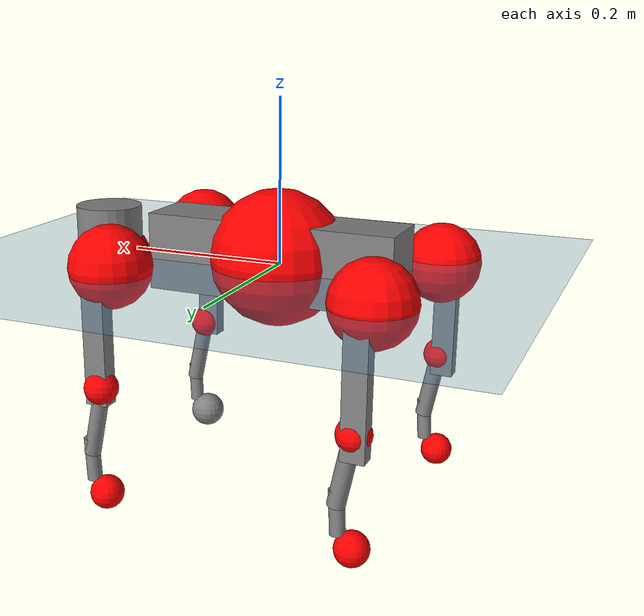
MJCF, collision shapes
<mujoco model="go2">
  <compiler angle="radian" assetdir="assets" balanceinertia="true" inertiafromgeom="false"/>

  <option timestep="0.005" density="1.2" viscosity="2e-05"/>

  <size nkey="1"/>

  <visual>
    <quality shadowsize="8192"/>
    <map shadowclip="0.5"/>
  </visual>

  <default>
    <default class="/">
      <geom contype="0" conaffinity="0" group="1" solref="-1000 -80"/>
      <site size="0.01 0.005 0.005" group="5"/>
      <general forcelimited="true" biastype="affine" gainprm="20" biasprm="0 -20 -0.5"/>
      <default class="go2">
        <joint armature="0.01" damping="0.01" frictionloss="0.2"/>
        <geom condim="1" margin="0.001"/>
        <default class="visual">
          <geom type="mesh" group="2"/>
        </default>
        <default class="collision">
          <geom group="3"/>
          <default class="foot">
            <geom size="0.022 0 0" condim="6" priority="1" friction="0.8 0.02 0.01" solimp="0.015 1 0.022"/>
          </default>
        </default>
        <default class="reward_collision_sphere">
          <geom group="5" rgba="1 0 0 1"/>
        </default>
      </default>
    </default>
  </default>

  <asset>
    <texture type="skybox" colorspace="auto" name="//unnamed_texture_0" builtin="gradient" rgb1="0.95 0.95 0.95" rgb2="0.95 0.95 0.95" width="100" height="600"/>
    <texture type="2d" colorspace="auto" name="texplane" builtin="checker" rgb1="0.345 0.575 0.748" rgb2="0.345 0.575 0.748" markrgb="1 1 1" width="512" height="512"/>
    <material name="MatPlane" class="/" texture="texplane" texuniform="true" texrepeat="2 2" specular="0.9"/>
    <material name="metal" class="/" rgba="0.9 0.95 0.95 1"/>
    <material name="black" class="/" rgba="0 0 0 1"/>
    <material name="white" class="/"/>
    <material name="gray" class="/" rgba="0.671705 0.692426 0.77427 1"/>
    <mesh name="base_0" class="/" file="base_0.obj"/>
    <mesh name="base_1" class="/" file="base_1.obj"/>
    <mesh name="base_2" class="/" file="base_2.obj"/>
    <mesh name="base_3" class="/" file="base_3.obj"/>
    <mesh name="base_4" class="/" file="base_4.obj"/>
    <mesh name="hip_0" class="/" file="hip_0.obj"/>
    <mesh name="hip_1" class="/" file="hip_1.obj"/>
    <mesh name="thigh_0" class="/" file="thigh_0.obj"/>
    <mesh name="thigh_1" class="/" file="thigh_1.obj"/>
    <mesh name="thigh_mirror_0" class="/" file="thigh_mirror_0.obj"/>
    <mesh name="thigh_mirror_1" class="/" file="thigh_mirror_1.obj"/>
    <mesh name="calf_0" class="/" file="calf_0.obj"/>
    <mesh name="calf_1" class="/" file="calf_1.obj"/>
    <mesh name="calf_mirror_0" class="/" file="calf_mirror_0.obj"/>
    <mesh name="calf_mirror_1" class="/" file="calf_mirror_1.obj"/>
    <mesh name="foot" class="/" file="foot.obj"/>
  </asset>

  <worldbody>
    <geom name="floor" class="/" size="100 100 0.125" type="plane" group="0" material="MatPlane"/>
    <light name="toplight_shadow" class="/" pos="0 0 5" dir="0.0990148 0.0990148 -0.990148" type="directional" ambient="0.04 0.04 0.04" diffuse="0.55 0.55 0.55" specular="0.12 0.12 0.12"/>
    <light name="toplight_fill" class="/" pos="0 0 5" dir="0.0990148 0.0990148 -0.990148" type="directional" castshadow="false" ambient="0.04 0.04 0.04" diffuse="0.3 0.3 0.3" specular="0.08 0.08 0.08"/>
    <body name="trunk" childclass="go2" pos="0.0021108 0.000210128 0.00800995" quat="0.999994 0.000888652 -0.00252577 -0.00227076">
      <inertial pos="0.0206021 -0.00521669 -0.00394881" quat="-0.00762434 0.691532 -0.0125024 0.722197" mass="3.77864" diaginertia="0.0387772 0.0952632 0.00247984"/>
      <joint name="//unnamed_joint_0" type="free" armature="0" damping="0" frictionloss="0"/>
      <geom name="//unnamed_geom_1" class="visual" material="black" mesh="base_0"/>
      <geom name="//unnamed_geom_2" class="visual" material="black" mesh="base_1"/>
      <geom name="//unnamed_geom_3" class="visual" material="black" mesh="base_2"/>
      <geom name="//unnamed_geom_4" class="visual" material="white" mesh="base_3"/>
      <geom name="//unnamed_geom_5" class="visual" material="gray" mesh="base_4"/>
      <geom name="trunk_1" class="collision" size="0.157119 0.0390499 0.0476117" type="box"/>
      <geom name="trunk_2" class="collision" size="0.0417646 0.0375882" pos="0.239343 0 0.00644565" type="cylinder"/>
      <geom name="trunk_3" class="collision" size="0.0392587" pos="0.246062 0 -0.0386739"/>
      <geom name="//unnamed_geom_9" class="reward_collision_sphere" size="0.0835292"/>
      <geom name="//unnamed_geom_10" class="reward_collision_sphere" size="0.0501175" pos="0.235144 0 -0.0290054"/>
      <site name="imu" pos="-0.0128647 -0.0118696 0.0508201" size="0.00835292"/>
      <camera name="track" pos="0 -2.04302 0" quat="0.707107 0.707107 0 0" mode="trackcom"/>
      <camera name="ego_camera" pos="0.262018 0 0.0290054" quat="-0.5 -0.5 0.5 0.5"/>
      <body name="FL_hip" pos="0.162429 0.0480345 -0.00173694" quat="1 -2.31533e-05 -0.000659234 0.000520541">
        <inertial pos="0.00198277 0.00382938 0.00777894" quat="0.522922 0.494194 0.510953 0.470373" mass="0.409608" diaginertia="0.000359943 0.000674467 5.48656e-05"/>
        <joint name="FL_hip_joint" pos="0 0 0" axis="0.999498 -0.0080257 0.0306583" stiffness="0.0218675" range="-1.05082 1.01071" armature="0.00836962" damping="0.0282436" frictionloss="0.152247"/>
        <geom name="//unnamed_geom_11" class="visual" material="metal" mesh="hip_0"/>
        <geom name="//unnamed_geom_12" class="visual" material="gray" mesh="hip_1"/>
        <geom name="//unnamed_geom_13" class="collision" size="0.0384235 0.0167058" pos="0 0.0817209 0" quat="0.707107 0.707107 0 0" type="cylinder"/>
        <geom name="//unnamed_geom_14" class="reward_collision_sphere" size="0.0501175" pos="0 0.0715058 0"/>
        <body name="FL_thigh" pos="0.00508587 0.0969046 -0.00579219" quat="1 -3.44427e-06 -5.66037e-06 -3.37289e-06">
          <inertial pos="-0.00189556 -0.0217848 -0.0230235" quat="0.828683 0.0841441 -0.0182565 0.553056" mass="0.73367" diaginertia="0.00272388 0.00699805 0.000111698"/>
          <joint name="FL_thigh_joint" pos="0 0 0" axis="0.00431347 0.999989 0.00190904" stiffness="0.0105553" range="-1.5291 3.47916" armature="0.00983292" damping="0" frictionloss="0.166347"/>
          <geom name="//unnamed_geom_15" class="visual" material="metal" mesh="thigh_0"/>
          <geom name="//unnamed_geom_16" class="visual" material="gray" mesh="thigh_1"/>
          <geom name="//unnamed_geom_17" class="collision" size="0.0889586 0.0102323 0.0142" pos="0 0 -0.0686461" quat="0.707107 0 0.707107 0" type="box"/>
          <body name="FL_calf" pos="-0.00214325 0.00105945 -0.137546" quat="1 -0.000154218 0.000191207 -0.000147347">
            <inertial pos="0.0143985 0.00673416 -0.0927096" quat="0.707933 -0.00675967 -0.00642063 0.706218" mass="0.13868" diaginertia="0.000660884 0.00163652 5.7659e-06"/>
            <joint name="FL_calf_joint" pos="0 0 0" axis="0.000106841 0.999996 -0.00288424" stiffness="0.0137878" range="-2.54501 -0.885067" armature="0.00812957" damping="0" frictionloss="0.0969391"/>
            <geom name="//unnamed_geom_18" class="visual" material="gray" mesh="calf_0"/>
            <geom name="//unnamed_geom_19" class="visual" material="black" mesh="calf_1"/>
            <geom name="FL_calf0" class="collision" size="0.0100235 0.0501175" pos="0.00671841 0 -0.0386739" quat="0.994493 0 -0.104807 0" type="cylinder"/>
            <geom name="//unnamed_geom_21" class="collision" size="0.00918822 0.027147" pos="0.016796 0 -0.0953956" quat="0.999688 0 0.0249974 0" type="cylinder"/>
            <geom name="//unnamed_geom_22" class="visual" pos="0 0 -0.137292" quat="1 0 0 0" material="black" mesh="foot"/>
            <geom name="FL_foot" class="foot" size="0.0199914" pos="-0.0016796 0 -0.137292"/>
            <geom name="//unnamed_geom_24" class="reward_collision_sphere" size="0.0208823"/>
            <geom name="//unnamed_geom_25" class="reward_collision_sphere" size="0.0208823" pos="-0.0016796 0 -0.137292"/>
            <site name="FL_foot" class="foot" pos="-0.0016796 0 -0.137292" size="0.00835292"/>
          </body>
        </body>
      </body>
      <body name="FR_hip" pos="0.164764 -0.0507629 -0.00119533" quat="0.999991 -4.50558e-05 -0.00414589 -0.000704383">
        <inertial pos="-0.00399677 -0.00115304 0.000460725" quat="0.515078 0.480137 0.483625 0.519876" mass="0.351918" diaginertia="0.000374977 0.000647465 5.43733e-05"/>
        <joint name="FR_hip_joint" pos="0 0 0" axis="0.99995 0.00814261 0.00588192" stiffness="0.0297724" range="-0.889656 1.08308" armature="0.00878424" damping="0.0225656" frictionloss="0.141353"/>
        <geom name="//unnamed_geom_26" class="visual" pos="0 3.2838e-09 1.40849e-07" quat="4.63268e-05 1 0 0" material="metal" mesh="hip_0"/>
        <geom name="//unnamed_geom_27" class="visual" pos="0 5.32343e-09 -3.48374e-07" quat="4.63268e-05 1 0 0" material="gray" mesh="hip_1"/>
        <geom name="//unnamed_geom_28" class="collision" size="0.0384235 0.0167058" pos="0 -0.0817209 0" quat="0.707107 0.707107 0 0" type="cylinder"/>
        <geom name="//unnamed_geom_29" class="reward_collision_sphere" size="0.0501175" pos="0 -0.0715058 0"/>
        <body name="FR_thigh" pos="0.00270693 -0.0947144 -0.00435988" quat="1 -8.06335e-05 -0.00027797 -0.000322247">
          <inertial pos="-0.00111527 0.0247193 -0.0218233" quat="0.551281 -0.0158603 0.0859434 0.82973" mass="0.63871" diaginertia="0.00256094 0.00697069 9.76199e-05"/>
          <joint name="FR_thigh_joint" pos="0 0 0" axis="-0.000608869 -0.999996 -0.00292039" range="-3.48135 1.61436" armature="0.0087468" damping="0.0504358" frictionloss="0.20747"/>
          <geom name="//unnamed_geom_30" class="visual" material="metal" mesh="thigh_mirror_0"/>
          <geom name="//unnamed_geom_31" class="visual" material="gray" mesh="thigh_mirror_1"/>
          <geom name="//unnamed_geom_32" class="collision" size="0.0889586 0.0102323 0.0142" pos="0 0 -0.0686461" quat="0.707107 0 0.707107 0" type="box"/>
          <body name="FR_calf" pos="0.00766873 0.00232554 -0.142752" quat="1 -0.000548377 0.000496657 4.23618e-05">
            <inertial pos="0.00419796 0.00733553 -0.0961596" quat="0.671928 -0.00318964 0.00190653 0.740607" mass="0.148916" diaginertia="0.000658356 0.00163231 6.65094e-06"/>
            <joint name="FR_calf_joint" pos="0 0 0" axis="-0.00217513 -0.99998 0.00590227" range="0.811217 2.68886" armature="0.00850774" damping="0.0255705" frictionloss="0.178533"/>
            <geom name="//unnamed_geom_33" class="visual" material="gray" mesh="calf_mirror_0"/>
            <geom name="//unnamed_geom_34" class="visual" material="black" mesh="calf_mirror_1"/>
            <geom name="FR_calf0" class="collision" size="0.0108588 0.0501175" pos="0.00839802 0 -0.0386739" quat="0.995004 0 -0.0998334 0" type="cylinder"/>
            <geom name="//unnamed_geom_36" class="collision" size="0.00918822 0.027147" pos="0.016796 0 -0.0953956" quat="0.999688 0 0.0249974 0" type="cylinder"/>
            <geom name="//unnamed_geom_37" class="visual" pos="0 0 -0.137292" quat="1 0 0 0" material="black" mesh="foot"/>
            <geom name="FR_foot" class="foot" size="0.0233938" pos="-0.0016796 0 -0.137292"/>
            <geom name="//unnamed_geom_39" class="reward_collision_sphere" size="0.0208823"/>
            <geom name="//unnamed_geom_40" class="reward_collision_sphere" size="0.0208823" pos="-0.0016796 0 -0.137292"/>
            <site name="FR_foot" class="foot" pos="-0.0016796 0 -0.137292" size="0.00835292"/>
          </body>
        </body>
      </body>
      <body name="RL_hip" pos="-0.162204 0.0507777 -0.00507849" quat="1 -8.84878e-06 -5.30977e-05 8.79604e-05">
        <inertial pos="0.00403993 0.00849127 0.00795555" quat="0.50629 0.498551 0.497123 0.497982" mass="0.395656" diaginertia="0.000386159 0.000678775 5.80904e-05"/>
        <joint name="RL_hip_joint" pos="0 0 0" axis="-0.999562 -0.0213573 -0.0204891" stiffness="0.0100214" range="-0.927335 0.910958" armature="0.00592845" damping="0" frictionloss="0.17007"/>
        <geom name="//unnamed_geom_41" class="visual" pos="-1.70082e-09 0 -3.334e-07" quat="4.63268e-05 0 1 0" material="metal" mesh="hip_0"/>
        <geom name="//unnamed_geom_42" class="visual" pos="-2.75724e-09 0 -2.95679e-07" quat="4.63268e-05 0 1 0" material="gray" mesh="hip_1"/>
        <geom name="//unnamed_geom_43" class="collision" size="0.0384235 0.0167058" pos="0 0.0817209 0" quat="0.707107 0.707107 0 0" type="cylinder"/>
        <geom name="//unnamed_geom_44" class="reward_collision_sphere" size="0.0501175" pos="0 0.0715058 0"/>
        <body name="RL_thigh" pos="0.00347278 0.103223 -0.0086538" quat="0.999998 0.0018134 -0.000255578 0.00089059">
          <inertial pos="-0.0118554 -0.0186731 -0.0124993" quat="0.829698 0.0842681 -0.0201692 0.551446" mass="0.579894" diaginertia="0.00200481 0.00589442 8.26419e-05"/>
          <joint name="RL_thigh_joint" pos="0 0 0" axis="0.0217835 0.99889 0.0417684" range="-0.462778 4.56831" armature="0.00867825" damping="0.0508345" frictionloss="0.159024"/>
          <geom name="//unnamed_geom_45" class="visual" material="metal" mesh="thigh_0"/>
          <geom name="//unnamed_geom_46" class="visual" material="gray" mesh="thigh_1"/>
          <geom name="//unnamed_geom_47" class="collision" size="0.0889586 0.0102323 0.0142" pos="0 0 -0.0686461" quat="0.707107 0 0.707107 0" type="box"/>
          <body name="RL_calf" pos="0.00374973 -0.00541859 -0.130746" quat="0.999997 0.000236927 0.000220875 0.00235687">
            <inertial pos="0.0129486 -0.00420761 -0.0828531" quat="0.717426 0.00864997 0.026019 0.696094" mass="0.150951" diaginertia="0.000647425 0.00174092 6.14369e-06"/>
            <joint name="RL_calf_joint" pos="0 0 0" axis="-0.00027457 0.999893 0.0146368" range="-2.68872 -0.655588" armature="0.00559581" damping="0.0467903" frictionloss="0.170673"/>
            <geom name="//unnamed_geom_48" class="visual" material="gray" mesh="calf_0"/>
            <geom name="//unnamed_geom_49" class="visual" material="black" mesh="calf_1"/>
            <geom name="RL_calf0" class="collision" size="0.0108588 0.0501175" pos="0.00839802 0 -0.0386739" quat="0.995004 0 -0.0998334 0" type="cylinder"/>
            <geom name="//unnamed_geom_51" class="collision" size="0.00918822 0.027147" pos="0.016796 0 -0.0953956" quat="0.999688 0 0.0249974 0" type="cylinder"/>
            <geom name="//unnamed_geom_52" class="visual" pos="0 0 -0.137292" quat="1 0 0 0" material="black" mesh="foot"/>
            <geom name="RL_foot" class="foot" size="0.0187623" pos="-0.0016796 0 -0.137292"/>
            <geom name="//unnamed_geom_54" class="reward_collision_sphere" size="0.0208823"/>
            <geom name="//unnamed_geom_55" class="reward_collision_sphere" size="0.0208823" pos="-0.0016796 0 -0.137292"/>
            <site name="RL_foot" class="foot" pos="-0.0016796 0 -0.137292" size="0.00835292"/>
          </body>
        </body>
      </body>
      <body name="RR_hip" pos="-0.171361 -0.0493944 -0.0167762" quat="1 -0.000140775 0.000124386 0.000157959">
        <inertial pos="0.00961953 0.000753915 -0.0020284" quat="0.517996 0.510097 0.475401 0.495454" mass="0.396486" diaginertia="0.000301884 0.000606389 4.69601e-05"/>
        <joint name="RR_hip_joint" pos="0 0 0" axis="-0.998974 -0.0315695 -0.032461" stiffness="0.00601396" range="-1.02486 1.04763" armature="0.00841739" damping="0.0105226" frictionloss="0.0930729"/>
        <geom name="//unnamed_geom_56" class="visual" pos="1.70711e-09 3.2838e-09 -4.74249e-07" quat="2.14617e-09 4.63268e-05 4.63268e-05 -1" material="metal" mesh="hip_0"/>
        <geom name="//unnamed_geom_57" class="visual" pos="2.74168e-09 5.32343e-09 5.26948e-08" quat="2.14617e-09 4.63268e-05 4.63268e-05 -1" material="gray" mesh="hip_1"/>
        <geom name="//unnamed_geom_58" class="collision" size="0.0384235 0.0167058" pos="0 -0.0817209 0" quat="0.707107 0.707107 0 0" type="cylinder"/>
        <geom name="//unnamed_geom_59" class="reward_collision_sphere" size="0.0501175" pos="0 -0.0715058 0"/>
        <body name="RR_thigh" pos="-0.00293084 -0.0984408 4.03246e-05" quat="0.999999 -0.000906863 0.000101659 0.00122682">
          <inertial pos="-0.0052501 0.0244352 -0.0136331" quat="0.539692 -0.0136675 0.0899507 0.836931" mass="0.738055" diaginertia="0.00228792 0.00639277 9.86987e-05"/>
          <joint name="RR_thigh_joint" pos="0 0 0" axis="0.00036205 -0.999997 0.00238524" stiffness="0.00831701" range="-4.53723 0.615733" armature="0.00861682" damping="0.00325513" frictionloss="0.158317"/>
          <geom name="//unnamed_geom_60" class="visual" material="metal" mesh="thigh_mirror_0"/>
          <geom name="//unnamed_geom_61" class="visual" material="gray" mesh="thigh_mirror_1"/>
          <geom name="//unnamed_geom_62" class="collision" size="0.0889586 0.0102323 0.0142" pos="0 0 -0.0686461" quat="0.707107 0 0.707107 0" type="box"/>
          <body name="RR_calf" pos="0.00697267 -0.00507499 -0.132898" quat="0.99999 -6.64447e-05 0.00456332 0.000336446">
            <inertial pos="0.00553409 0.00181407 -0.0931443" quat="0.717481 0.00985438 0.024395 0.696081" mass="0.133154" diaginertia="0.000587461 0.00153953 6.22401e-06"/>
            <joint name="RR_calf_joint" pos="0 0 0" axis="0.0184111 -0.999124 -0.0375773" stiffness="0.03612" range="0.719139 2.69775" armature="0.00856216" damping="0.0400698" frictionloss="0.159044"/>
            <geom name="//unnamed_geom_63" class="visual" material="gray" mesh="calf_mirror_0"/>
            <geom name="//unnamed_geom_64" class="visual" material="black" mesh="calf_mirror_1"/>
            <geom name="RR_calf0" class="collision" size="0.0108588 0.0501175" pos="0.00839802 0 -0.0386739" quat="0.995004 0 -0.0998334 0" type="cylinder"/>
            <geom name="//unnamed_geom_66" class="collision" size="0.00918822 0.027147" pos="0.016796 0 -0.0953956" quat="0.999688 0 0.0249974 0" type="cylinder"/>
            <geom name="//unnamed_geom_67" class="visual" pos="0 0 -0.137292" quat="1 0 0 0" material="black" mesh="foot"/>
            <geom name="RR_foot" class="foot" size="0.0181373" pos="-0.0016796 0 -0.137292"/>
            <geom name="//unnamed_geom_69" class="reward_collision_sphere" size="0.0208823"/>
            <geom name="//unnamed_geom_70" class="reward_collision_sphere" size="0.0208823" pos="-0.0016796 0 -0.137292"/>
            <site name="RR_foot" class="foot" pos="-0.0016796 0 -0.137292" size="0.00835292"/>
          </body>
        </body>
      </body>
    </body>
  </worldbody>

  <contact>
    <pair class="/" geom1="floor" geom2="FL_foot" name="//unnamed_contact_0"/>
    <pair class="/" geom1="floor" geom2="FR_foot" name="//unnamed_contact_1"/>
    <pair class="/" geom1="floor" geom2="RL_foot" name="//unnamed_contact_2"/>
    <pair class="/" geom1="floor" geom2="RR_foot" name="//unnamed_contact_3"/>
  </contact>

  <actuator>
    <general name="FL_hip" class="/" joint="FL_hip_joint" forcerange="-18.5888 18.5888" gainprm="17.4474" biasprm="0 -17.4474 -0.406114"/>
    <general name="FL_thigh" class="/" joint="FL_thigh_joint" forcerange="-21.1211 21.1211" gainprm="17.4474" biasprm="0 -17.4474 -0.406114"/>
    <general name="FL_calf" class="/" joint="FL_calf_joint" forcerange="-34.888 34.888" gainprm="17.4474" biasprm="0 -17.4474 -0.406114"/>
    <general name="FR_hip" class="/" joint="FR_hip_joint" forcerange="-18.3034 18.3034" gainprm="17.4474" biasprm="0 -17.4474 -0.406114"/>
    <general name="FR_thigh" class="/" joint="FR_thigh_joint" forcerange="-18.3622 18.3622" gainprm="17.4474" biasprm="0 -17.4474 -0.406114"/>
    <general name="FR_calf" class="/" joint="FR_calf_joint" forcerange="-37.5237 37.5237" gainprm="17.4474" biasprm="0 -17.4474 -0.406114"/>
    <general name="RL_hip" class="/" joint="RL_hip_joint" forcerange="-19.2183 19.2183" gainprm="17.4474" biasprm="0 -17.4474 -0.406114"/>
    <general name="RL_thigh" class="/" joint="RL_thigh_joint" forcerange="-25.652 25.652" gainprm="17.4474" biasprm="0 -17.4474 -0.406114"/>
    <general name="RL_calf" class="/" joint="RL_calf_joint" forcerange="-28.7341 28.7341" gainprm="17.4474" biasprm="0 -17.4474 -0.406114"/>
    <general name="RR_hip" class="/" joint="RR_hip_joint" forcerange="-19.3757 19.3757" gainprm="17.4474" biasprm="0 -17.4474 -0.406114"/>
    <general name="RR_thigh" class="/" joint="RR_thigh_joint" forcerange="-19.6748 19.6748" gainprm="17.4474" biasprm="0 -17.4474 -0.406114"/>
    <general name="RR_calf" class="/" joint="RR_calf_joint" forcerange="-34.355 34.355" gainprm="17.4474" biasprm="0 -17.4474 -0.406114"/>
  </actuator>

  <sensor>
    <gyro site="imu" name="imu_angular_velocity"/>
    <velocimeter site="imu" name="imu_linear_velocity"/>
    <framelinvel objtype="site" objname="FL_foot" name="FL_foot_global_linear_velocity"/>
    <framelinvel objtype="site" objname="FR_foot" name="FR_foot_global_linear_velocity"/>
    <framelinvel objtype="site" objname="RL_foot" name="RL_foot_global_linear_velocity"/>
    <framelinvel objtype="site" objname="RR_foot" name="RR_foot_global_linear_velocity"/>
  </sensor>

  <keyframe>
    <key name="home" qpos="0 0 0.325 1 0 0 0 0.1 0.8 -1.5 -0.1 -0.8 1.5 -0.1 0.8 -1.5 0.1 -0.8 1.5"/>
  </keyframe>
</mujoco>
